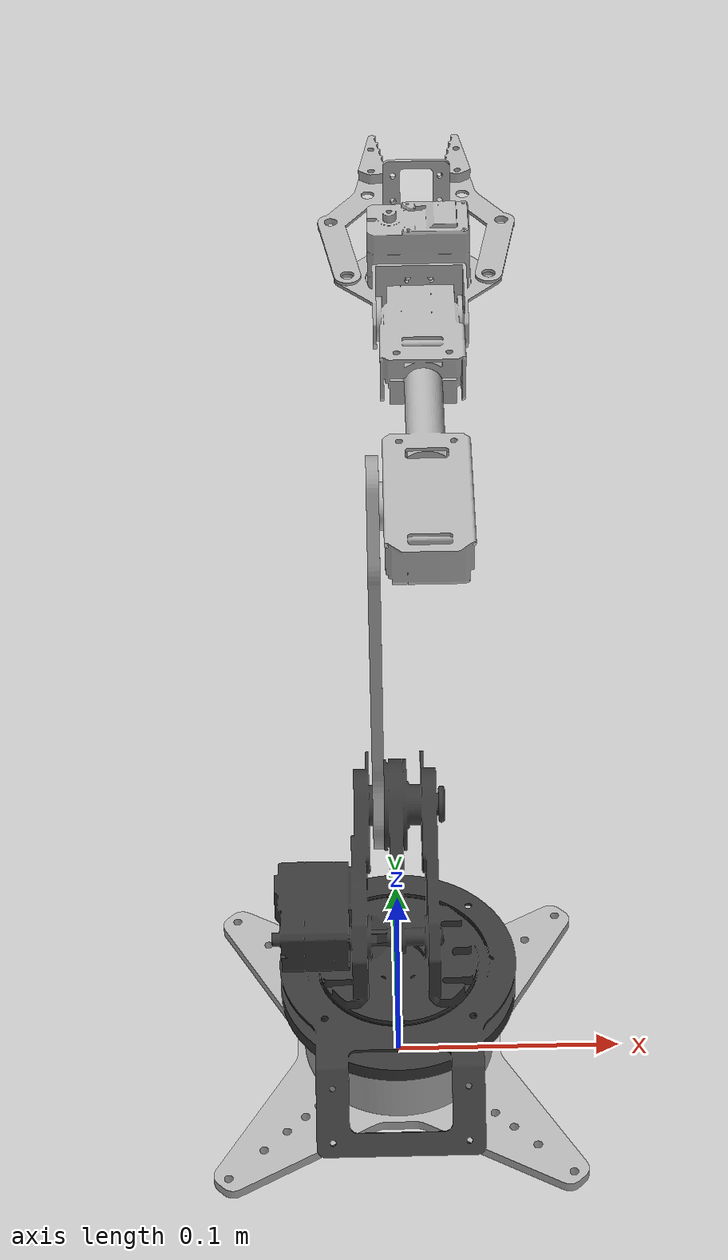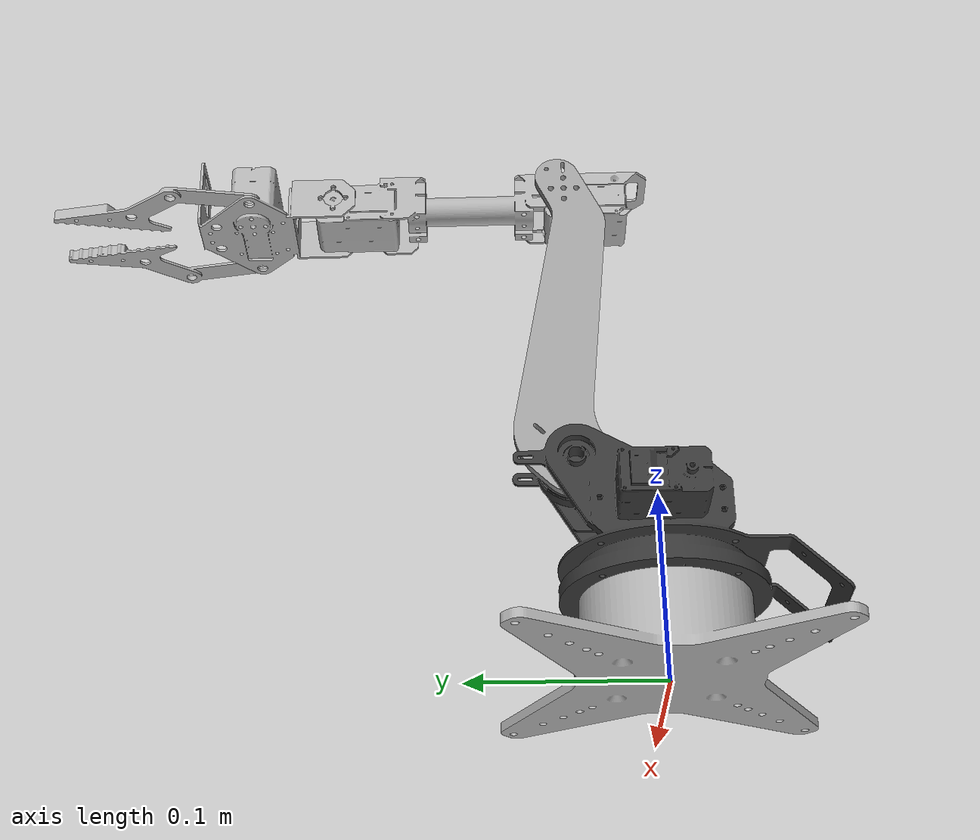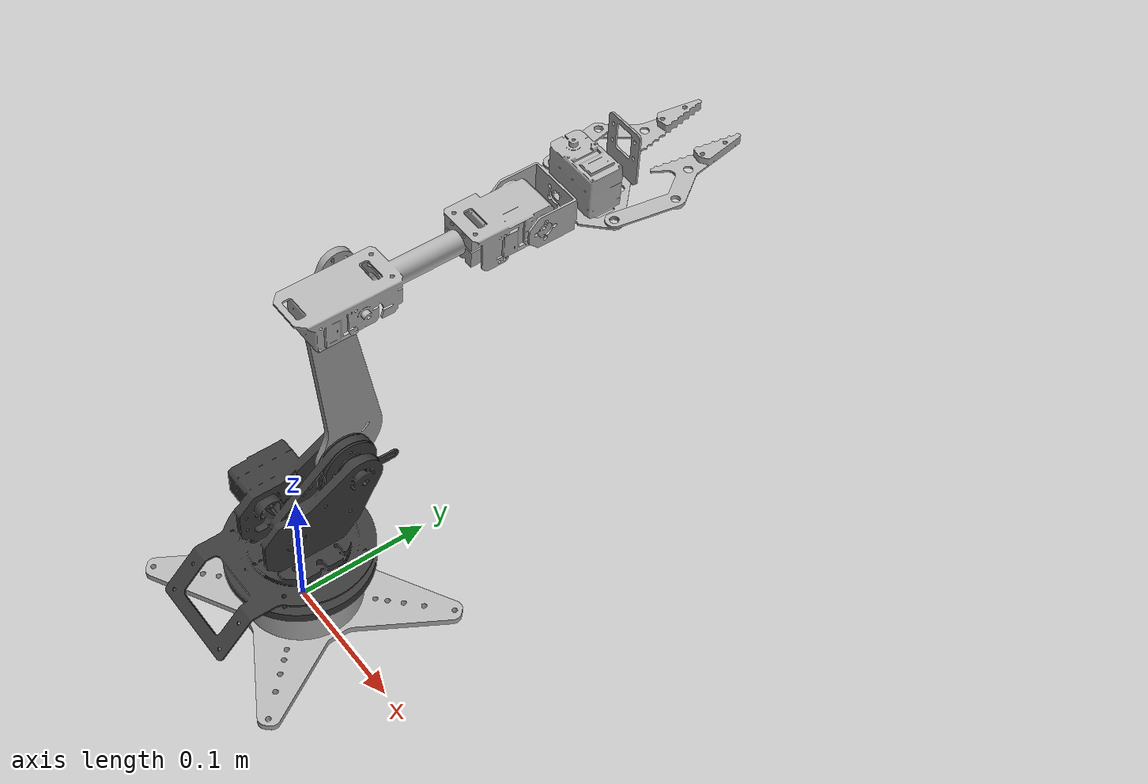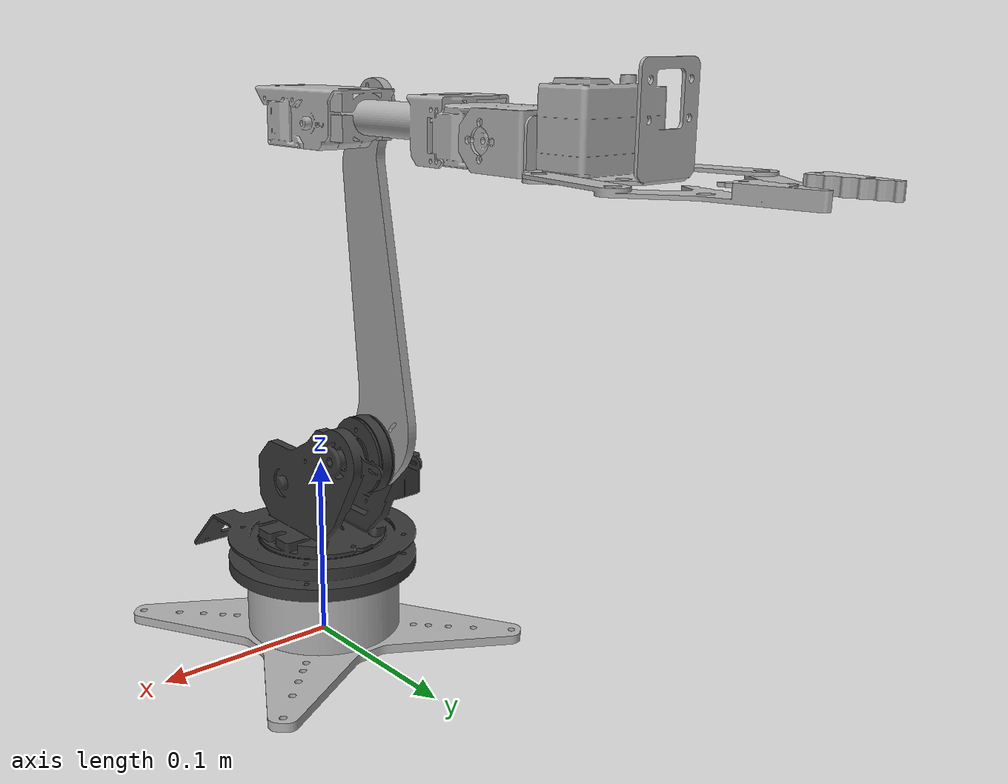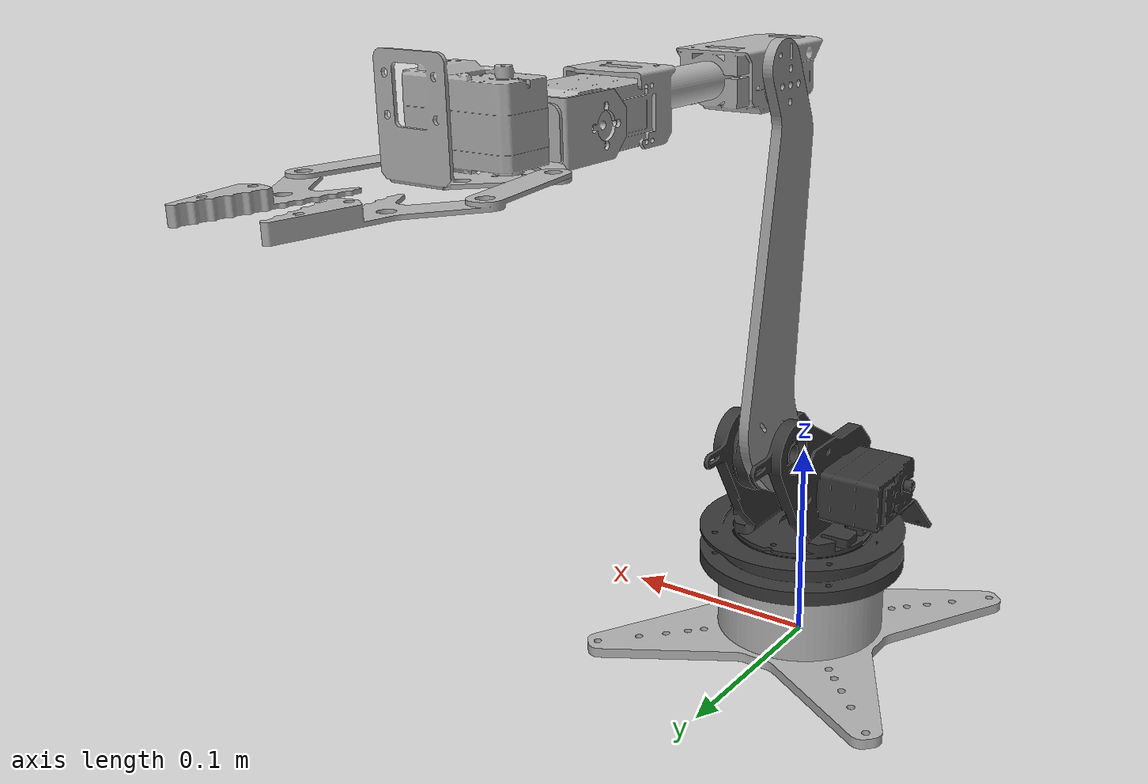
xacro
<?xml version="1.0" ?>
<robot name="roarm_assembly" xmlns:xacro="http://www.ros.org/wiki/xacro">

<xacro:include filename="$(find roarm_assembly_description)/urdf/materials.xacro" />
<xacro:include filename="$(find roarm_assembly_description)/urdf/roarm_assembly.trans" />
<xacro:include filename="$(find roarm_assembly_description)/urdf/roarm_assembly.gazebo" />
<link name="base_link">
  <inertial>
    <origin xyz="2.842170943040401e-16 1.6253665080512292e-15 0.010307344162242452" rpy="0 0 0"/>
    <mass value="0.9330886709339293"/>
    <inertia ixx="0.001421" iyy="0.001421" izz="0.002578" ixy="0.0" iyz="-0.0" ixz="0.0"/>
  </inertial>
  <visual>
    <origin xyz="0 0 0" rpy="0 0 0"/>
    <geometry>
      <mesh filename="package://roarm_assembly_description/meshes/base_link.stl" scale="0.001 0.001 0.001"/>
    </geometry>
    <material name="silver_default"/>
  </visual>
  <collision>
    <origin xyz="0 0 0" rpy="0 0 0"/>
    <geometry>
      <mesh filename="package://roarm_assembly_description/meshes/base_link.stl" scale="0.001 0.001 0.001"/>
    </geometry>
  </collision>
</link>

<link name="link_1__1__1">
  <inertial>
    <origin xyz="-0.003248824428456881 0.00456933378923944 0.025593798133347008" rpy="0 0 0"/>
    <mass value="1.6261208283126793"/>
    <inertia ixx="0.002624" iyy="0.002426" izz="0.002118" ixy="-2.6e-05" iyz="-0.000455" ixz="0.000319"/>
  </inertial>
  <visual>
    <origin xyz="0.0 -0.0 -0.041" rpy="0 0 0"/>
    <geometry>
      <mesh filename="package://roarm_assembly_description/meshes/link_1__1__1.stl" scale="0.001 0.001 0.001"/>
    </geometry>
    <material name="opaque565656"/>
  </visual>
  <collision>
    <origin xyz="0.0 -0.0 -0.041" rpy="0 0 0"/>
    <geometry>
      <mesh filename="package://roarm_assembly_description/meshes/link_1__1__1.stl" scale="0.001 0.001 0.001"/>
    </geometry>
  </collision>
</link>

<link name="link_2__1__1">
  <inertial>
    <origin xyz="0.0014995401177805212 0.0024349435050276605 0.08033532296460895" rpy="0 0 0"/>
    <mass value="0.2532575834482899"/>
    <inertia ixx="0.000795" iyy="0.000761" izz="3.6e-05" ixy="0.0" iyz="5.6e-05" ixz="-0.0"/>
  </inertial>
  <visual>
    <origin xyz="0.008711 -0.041051 -0.11574" rpy="0 0 0"/>
    <geometry>
      <mesh filename="package://roarm_assembly_description/meshes/link_2__1__1.stl" scale="0.001 0.001 0.001"/>
    </geometry>
    <material name="steel_satin"/>
  </visual>
  <collision>
    <origin xyz="0.008711 -0.041051 -0.11574" rpy="0 0 0"/>
    <geometry>
      <mesh filename="package://roarm_assembly_description/meshes/link_2__1__1.stl" scale="0.001 0.001 0.001"/>
    </geometry>
  </collision>
</link>

<link name="link_3__1__1">
  <inertial>
    <origin xyz="0.01895305134049728 0.04968902458298733 0.0013294047430696398" rpy="0 0 0"/>
    <mass value="0.6682248227150333"/>
    <inertia ixx="0.002549" iyy="9.9e-05" izz="0.00257" ixy="-9e-06" iyz="2.1e-05" ixz="-0.0"/>
  </inertial>
  <visual>
    <origin xyz="0.004711 -0.041051 -0.284598" rpy="0 0 0"/>
    <geometry>
      <mesh filename="package://roarm_assembly_description/meshes/link_3__1__1.stl" scale="0.001 0.001 0.001"/>
    </geometry>
    <material name="silver_default"/>
  </visual>
  <collision>
    <origin xyz="0.004711 -0.041051 -0.284598" rpy="0 0 0"/>
    <geometry>
      <mesh filename="package://roarm_assembly_description/meshes/link_3__1__1.stl" scale="0.001 0.001 0.001"/>
    </geometry>
  </collision>
</link>

<link name="eef_base_1">
  <inertial>
    <origin xyz="0.019105713731911726 0.04318596653770779 0.004330849807673176" rpy="0 0 0"/>
    <mass value="0.33153308863416786"/>
    <inertia ixx="9.1e-05" iyy="9.2e-05" izz="0.000121" ixy="-0.0" iyz="-5e-06" ixz="-1e-06"/>
  </inertial>
  <visual>
    <origin xyz="0.004411 -0.168975 -0.284598" rpy="0 0 0"/>
    <geometry>
      <mesh filename="package://roarm_assembly_description/meshes/eef_base_1.stl" scale="0.001 0.001 0.001"/>
    </geometry>
    <material name="silver_default"/>
  </visual>
  <collision>
    <origin xyz="0.004411 -0.168975 -0.284598" rpy="0 0 0"/>
    <geometry>
      <mesh filename="package://roarm_assembly_description/meshes/eef_base_1.stl" scale="0.001 0.001 0.001"/>
    </geometry>
  </collision>
</link>

<link name="left_claw_1">
  <inertial>
    <origin xyz="0.006511678868823683 0.0644377863644181 0.0008022347112953687" rpy="0 0 0"/>
    <mass value="0.027361315989100073"/>
    <inertia ixx="2.5e-05" iyy="2e-06" izz="2.7e-05" ixy="-5e-06" iyz="-0.0" ixz="-0.0"/>
  </inertial>
  <visual>
    <origin xyz="0.016901 -0.21391 -0.27514" rpy="0 0 0"/>
    <geometry>
      <mesh filename="package://roarm_assembly_description/meshes/left_claw_1.stl" scale="0.001 0.001 0.001"/>
    </geometry>
    <material name="silver_default"/>
  </visual>
  <collision>
    <origin xyz="0.016901 -0.21391 -0.27514" rpy="0 0 0"/>
    <geometry>
      <mesh filename="package://roarm_assembly_description/meshes/left_claw_1.stl" scale="0.001 0.001 0.001"/>
    </geometry>
  </collision>
</link>

<link name="right_claw_1">
  <inertial>
    <origin xyz="-0.0065193592272983075 0.06443898009782462 0.0008022347112930373" rpy="0 0 0"/>
    <mass value="0.027361315989100486"/>
    <inertia ixx="2.5e-05" iyy="2e-06" izz="2.7e-05" ixy="5e-06" iyz="-0.0" ixz="0.0"/>
  </inertial>
  <visual>
    <origin xyz="-0.046099 -0.21391 -0.27514" rpy="0 0 0"/>
    <geometry>
      <mesh filename="package://roarm_assembly_description/meshes/right_claw_1.stl" scale="0.001 0.001 0.001"/>
    </geometry>
    <material name="silver_default"/>
  </visual>
  <collision>
    <origin xyz="-0.046099 -0.21391 -0.27514" rpy="0 0 0"/>
    <geometry>
      <mesh filename="package://roarm_assembly_description/meshes/right_claw_1.stl" scale="0.001 0.001 0.001"/>
    </geometry>
  </collision>
</link>

<joint name="base_twist" type="continuous">
  <origin xyz="0.0 0.0 0.041" rpy="0 0 0"/>
  <parent link="base_link"/>
  <child link="link_1__1__1"/>
  <axis xyz="0.0 0.0 1.0"/>
</joint>

<joint name="shoulder" type="revolute">
  <origin xyz="-0.008711 0.041051 0.07474" rpy="0 0 0"/>
  <parent link="link_1__1__1"/>
  <child link="link_2__1__1"/>
  <axis xyz="1.0 0.0 -0.0"/>
  <limit upper="1.396263" lower="-2.094395" effort="100" velocity="100"/>
</joint>

<joint name="elbow" type="revolute">
  <origin xyz="0.004 0.0 0.168858" rpy="0 0 0"/>
  <parent link="link_2__1__1"/>
  <child link="link_3__1__1"/>
  <axis xyz="1.0 -0.0 -0.0"/>
  <limit upper="2.617994" lower="-2.617994" effort="100" velocity="100"/>
</joint>

<joint name="wrist" type="revolute">
  <origin xyz="0.0003 0.127924 0.0" rpy="0 0 0"/>
  <parent link="link_3__1__1"/>
  <child link="eef_base_1"/>
  <axis xyz="-1.0 -0.0 0.0"/>
  <limit upper="2.094395" lower="-2.094395" effort="100" velocity="100"/>
</joint>

<joint name="left_finger" type="revolute">
  <origin xyz="-0.01249 0.044935 -0.009458" rpy="0 0 0"/>
  <parent link="eef_base_1"/>
  <child link="left_claw_1"/>
  <axis xyz="0.0 -0.0 1.0"/>
  <limit upper="1.308997" lower="-0.261799" effort="100" velocity="100"/>
</joint>

<joint name="right_finger" type="revolute">
  <origin xyz="0.05051 0.044935 -0.009458" rpy="0 0 0"/>
  <parent link="eef_base_1"/>
  <child link="right_claw_1"/>
  <axis xyz="0.0 -0.0 1.0"/>
  <limit upper="0.261799" lower="-1.308997" effort="100" velocity="100"/>
</joint>

</robot>

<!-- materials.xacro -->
<robot name="roarm_assembly" xmlns:xacro="http://www.ros.org/wiki/xacro" >

<material name="silver_default">
  <color rgba="0.700 0.700 0.700 1.000"/>
</material>
<material name="opaque565656">
  <color rgba="0.2196078431372549 0.2196078431372549 0.2196078431372549 1.0"/>
</material>
<material name="steel_satin">
  <color rgba="0.6274509803921569 0.6274509803921569 0.6274509803921569 1.0"/>
</material>

</robot>

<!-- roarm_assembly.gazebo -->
<robot name="roarm_assembly" xmlns:xacro="http://www.ros.org/wiki/xacro" >

<xacro:property name="body_color" value="Gazebo/Silver" />

<gazebo>
  <plugin name="control" filename="libgazebo_ros_control.so"/>
</gazebo>
<gazebo reference="base_link">
  <material>${body_color}</material>
  <mu1>0.2</mu1>
  <mu2>0.2</mu2>
  <selfCollide>true</selfCollide>
  <gravity>true</gravity>
</gazebo>

<gazebo reference="link_1__1__1">
  <material>${body_color}</material>
  <mu1>0.2</mu1>
  <mu2>0.2</mu2>
  <selfCollide>true</selfCollide>
</gazebo>

<gazebo reference="link_2__1__1">
  <material>${body_color}</material>
  <mu1>0.2</mu1>
  <mu2>0.2</mu2>
  <selfCollide>true</selfCollide>
</gazebo>

<gazebo reference="link_3__1__1">
  <material>${body_color}</material>
  <mu1>0.2</mu1>
  <mu2>0.2</mu2>
  <selfCollide>true</selfCollide>
</gazebo>

<gazebo reference="eef_base_1">
  <material>${body_color}</material>
  <mu1>0.2</mu1>
  <mu2>0.2</mu2>
  <selfCollide>true</selfCollide>
</gazebo>

<gazebo reference="left_claw_1">
  <material>${body_color}</material>
  <mu1>0.2</mu1>
  <mu2>0.2</mu2>
  <selfCollide>true</selfCollide>
</gazebo>

<gazebo reference="right_claw_1">
  <material>${body_color}</material>
  <mu1>0.2</mu1>
  <mu2>0.2</mu2>
  <selfCollide>true</selfCollide>
</gazebo>

</robot>
